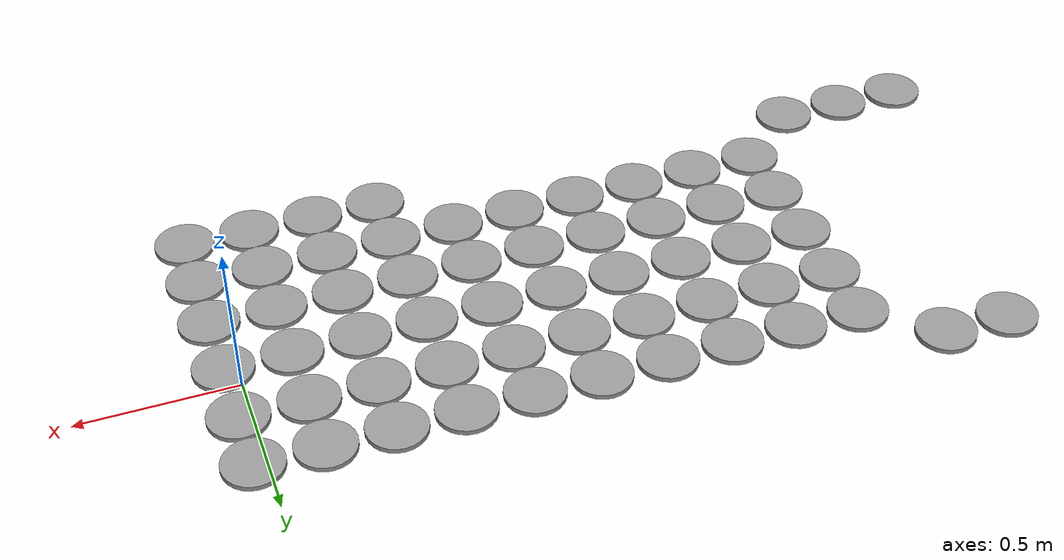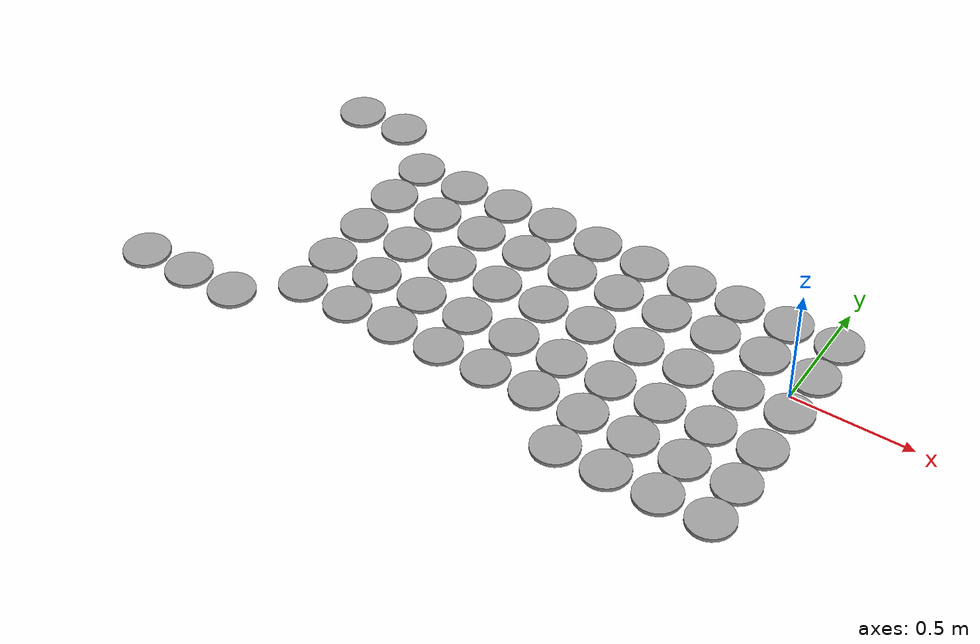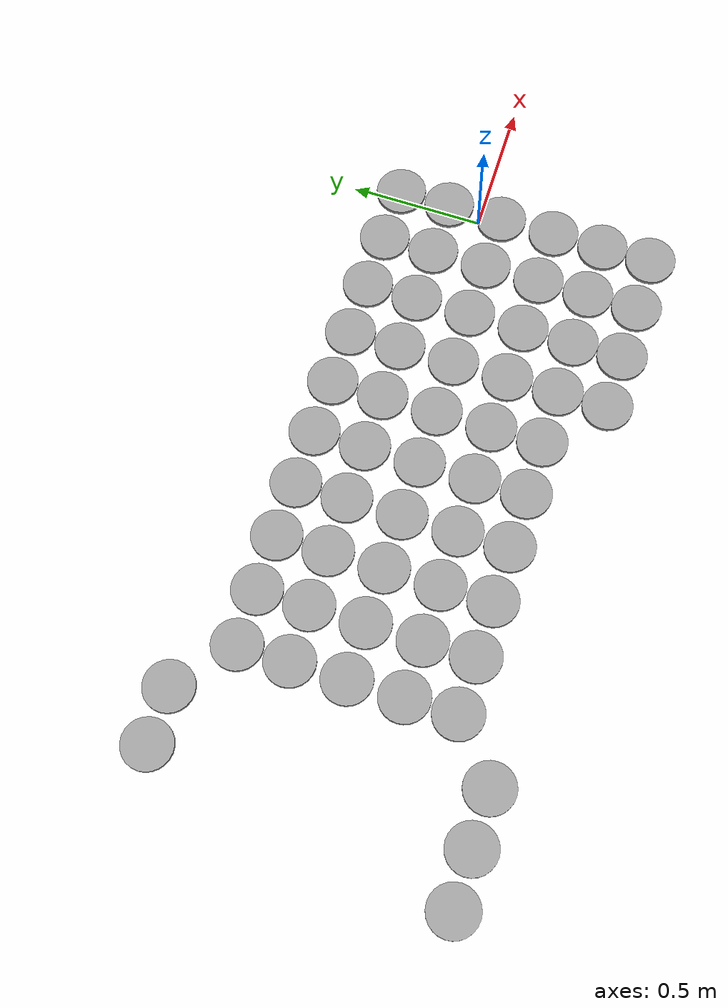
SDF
<sdf version="1.6">
 <world name="default">
  <model name="unit_cylinder_clone_65">
   <pose>-2.27 0.5 0.008117 0 -0 0</pose>
   <link name="link">
    <inertial>
     <mass>1</mass>
     <inertia><ixx>0.145833</ixx><ixy>0</ixy><ixz>0</ixz><iyy>0.145833</iyy><iyz>0</iyz><izz>0.125</izz></inertia>
    </inertial>
    <collision name="collision">
     <geometry><cylinder><radius>0.0950718</radius><length>0.0162339</length></cylinder></geometry>
     <max_contacts>5</max_contacts>
    </collision>
    <visual name="visual">
     <geometry><cylinder><radius>0.0950718</radius><length>0.0162339</length></cylinder></geometry>
     <material>
      <script><name>Gazebo/Grey</name><uri>file://media/materials/scripts/gazebo.material</uri></script>
     </material>
    </visual>
   </link>
  </model>
  <model name="unit_cylinder_clone_70">
   <pose>-2.06 0.5 0.008117 0 -0 0</pose>
   <link name="link">
    <inertial>
     <mass>1</mass>
     <inertia><ixx>0.145833</ixx><ixy>0</ixy><ixz>0</ixz><iyy>0.145833</iyy><iyz>0</iyz><izz>0.125</izz></inertia>
    </inertial>
    <collision name="collision">
     <geometry><cylinder><radius>0.0950718</radius><length>0.0162339</length></cylinder></geometry>
     <max_contacts>5</max_contacts>
    </collision>
    <visual name="visual">
     <geometry><cylinder><radius>0.0950718</radius><length>0.0162339</length></cylinder></geometry>
     <material>
      <script><name>Gazebo/Grey</name><uri>file://media/materials/scripts/gazebo.material</uri></script>
     </material>
    </visual>
   </link>
  </model>
  <model name="unit_cylinder_clone_325">
   <pose>-1.85 -0.484923 0.008117 0 -0 0</pose>
   <link name="link">
    <inertial>
     <mass>1</mass>
     <inertia><ixx>0.145833</ixx><ixy>0</ixy><ixz>0</ixz><iyy>0.145833</iyy><iyz>0</iyz><izz>0.125</izz></inertia>
    </inertial>
    <collision name="collision">
     <geometry><cylinder><radius>0.0950718</radius><length>0.0162339</length></cylinder></geometry>
     <max_contacts>5</max_contacts>
    </collision>
    <visual name="visual">
     <geometry><cylinder><radius>0.0950718</radius><length>0.0162339</length></cylinder></geometry>
     <material>
      <script><name>Gazebo/Grey</name><uri>file://media/materials/scripts/gazebo.material</uri></script>
     </material>
    </visual>
   </link>
  </model>
  <model name="unit_cylinder_clone_326">
   <pose>-1.85 -0.29 0.008117 0 -0 0</pose>
   <link name="link">
    <inertial>
     <mass>1</mass>
     <inertia><ixx>0.145833</ixx><ixy>0</ixy><ixz>0</ixz><iyy>0.145833</iyy><iyz>0</iyz><izz>0.125</izz></inertia>
    </inertial>
    <collision name="collision">
     <geometry><cylinder><radius>0.0950718</radius><length>0.0162339</length></cylinder></geometry>
     <max_contacts>5</max_contacts>
    </collision>
    <visual name="visual">
     <geometry><cylinder><radius>0.0950718</radius><length>0.0162339</length></cylinder></geometry>
     <material>
      <script><name>Gazebo/Grey</name><uri>file://media/materials/scripts/gazebo.material</uri></script>
     </material>
    </visual>
   </link>
  </model>
  <model name="unit_cylinder_clone_327">
   <pose>-1.85 -0.08 0.008117 0 -0 0</pose>
   <link name="link">
    <inertial>
     <mass>1</mass>
     <inertia><ixx>0.145833</ixx><ixy>0</ixy><ixz>0</ixz><iyy>0.145833</iyy><iyz>0</iyz><izz>0.125</izz></inertia>
    </inertial>
    <collision name="collision">
     <geometry><cylinder><radius>0.0950718</radius><length>0.0162339</length></cylinder></geometry>
     <max_contacts>5</max_contacts>
    </collision>
    <visual name="visual">
     <geometry><cylinder><radius>0.0950718</radius><length>0.0162339</length></cylinder></geometry>
     <material>
      <script><name>Gazebo/Grey</name><uri>file://media/materials/scripts/gazebo.material</uri></script>
     </material>
    </visual>
   </link>
  </model>
  <model name="unit_cylinder_clone_328">
   <pose>-1.85 0.13 0.008117 0 -0 0</pose>
   <link name="link">
    <inertial>
     <mass>1</mass>
     <inertia><ixx>0.145833</ixx><ixy>0</ixy><ixz>0</ixz><iyy>0.145833</iyy><iyz>0</iyz><izz>0.125</izz></inertia>
    </inertial>
    <collision name="collision">
     <geometry><cylinder><radius>0.0950718</radius><length>0.0162339</length></cylinder></geometry>
     <max_contacts>5</max_contacts>
    </collision>
    <visual name="visual">
     <geometry><cylinder><radius>0.0950718</radius><length>0.0162339</length></cylinder></geometry>
     <material>
      <script><name>Gazebo/Grey</name><uri>file://media/materials/scripts/gazebo.material</uri></script>
     </material>
    </visual>
   </link>
  </model>
  <model name="unit_cylinder_clone_329">
   <pose>-1.85 0.324923 0.008117 -0 -0 -0</pose>
   <link name="link">
    <inertial>
     <mass>1</mass>
     <inertia><ixx>0.145833</ixx><ixy>0</ixy><ixz>0</ixz><iyy>0.145833</iyy><iyz>0</iyz><izz>0.125</izz></inertia>
    </inertial>
    <collision name="collision">
     <geometry><cylinder><radius>0.0950718</radius><length>0.0162339</length></cylinder></geometry>
     <max_contacts>5</max_contacts>
    </collision>
    <visual name="visual">
     <geometry><cylinder><radius>0.0950718</radius><length>0.0162339</length></cylinder></geometry>
     <material>
      <script><name>Gazebo/Grey</name><uri>file://media/materials/scripts/gazebo.material</uri></script>
     </material>
    </visual>
   </link>
  </model>
  <model name="unit_cylinder_clone_330">
   <pose>-1.64 -0.484923 0.008117 0 -0 0</pose>
   <link name="link">
    <inertial>
     <mass>1</mass>
     <inertia><ixx>0.145833</ixx><ixy>0</ixy><ixz>0</ixz><iyy>0.145833</iyy><iyz>0</iyz><izz>0.125</izz></inertia>
    </inertial>
    <collision name="collision">
     <geometry><cylinder><radius>0.0950718</radius><length>0.0162339</length></cylinder></geometry>
     <max_contacts>5</max_contacts>
    </collision>
    <visual name="visual">
     <geometry><cylinder><radius>0.0950718</radius><length>0.0162339</length></cylinder></geometry>
     <material>
      <script><name>Gazebo/Grey</name><uri>file://media/materials/scripts/gazebo.material</uri></script>
     </material>
    </visual>
   </link>
  </model>
  <model name="unit_cylinder_clone_331">
   <pose>-1.64 -0.29 0.008117 0 -0 0</pose>
   <link name="link">
    <inertial>
     <mass>1</mass>
     <inertia><ixx>0.145833</ixx><ixy>0</ixy><ixz>0</ixz><iyy>0.145833</iyy><iyz>0</iyz><izz>0.125</izz></inertia>
    </inertial>
    <collision name="collision">
     <geometry><cylinder><radius>0.0950718</radius><length>0.0162339</length></cylinder></geometry>
     <max_contacts>5</max_contacts>
    </collision>
    <visual name="visual">
     <geometry><cylinder><radius>0.0950718</radius><length>0.0162339</length></cylinder></geometry>
     <material>
      <script><name>Gazebo/Grey</name><uri>file://media/materials/scripts/gazebo.material</uri></script>
     </material>
    </visual>
   </link>
  </model>
  <model name="unit_cylinder_clone_332">
   <pose>-1.64 -0.08 0.008117 0 -0 0</pose>
   <link name="link">
    <inertial>
     <mass>1</mass>
     <inertia><ixx>0.145833</ixx><ixy>0</ixy><ixz>0</ixz><iyy>0.145833</iyy><iyz>0</iyz><izz>0.125</izz></inertia>
    </inertial>
    <collision name="collision">
     <geometry><cylinder><radius>0.0950718</radius><length>0.0162339</length></cylinder></geometry>
     <max_contacts>5</max_contacts>
    </collision>
    <visual name="visual">
     <geometry><cylinder><radius>0.0950718</radius><length>0.0162339</length></cylinder></geometry>
     <material>
      <script><name>Gazebo/Grey</name><uri>file://media/materials/scripts/gazebo.material</uri></script>
     </material>
    </visual>
   </link>
  </model>
  <model name="unit_cylinder_clone_333">
   <pose>-1.64 0.13 0.008117 0 -0 0</pose>
   <link name="link">
    <inertial>
     <mass>1</mass>
     <inertia><ixx>0.145833</ixx><ixy>0</ixy><ixz>0</ixz><iyy>0.145833</iyy><iyz>0</iyz><izz>0.125</izz></inertia>
    </inertial>
    <collision name="collision">
     <geometry><cylinder><radius>0.0950718</radius><length>0.0162339</length></cylinder></geometry>
     <max_contacts>5</max_contacts>
    </collision>
    <visual name="visual">
     <geometry><cylinder><radius>0.0950718</radius><length>0.0162339</length></cylinder></geometry>
     <material>
      <script><name>Gazebo/Grey</name><uri>file://media/materials/scripts/gazebo.material</uri></script>
     </material>
    </visual>
   </link>
  </model>
  <model name="unit_cylinder_clone_334">
   <pose>-1.64 0.324923 0.008117 -0 -0 -0</pose>
   <link name="link">
    <inertial>
     <mass>1</mass>
     <inertia><ixx>0.145833</ixx><ixy>0</ixy><ixz>0</ixz><iyy>0.145833</iyy><iyz>0</iyz><izz>0.125</izz></inertia>
    </inertial>
    <collision name="collision">
     <geometry><cylinder><radius>0.0950718</radius><length>0.0162339</length></cylinder></geometry>
     <max_contacts>5</max_contacts>
    </collision>
    <visual name="visual">
     <geometry><cylinder><radius>0.0950718</radius><length>0.0162339</length></cylinder></geometry>
     <material>
      <script><name>Gazebo/Grey</name><uri>file://media/materials/scripts/gazebo.material</uri></script>
     </material>
    </visual>
   </link>
  </model>
  <model name="unit_cylinder_clone_335">
   <pose>-1.43 -0.484923 0.008117 0 -0 0</pose>
   <link name="link">
    <inertial>
     <mass>1</mass>
     <inertia><ixx>0.145833</ixx><ixy>0</ixy><ixz>0</ixz><iyy>0.145833</iyy><iyz>0</iyz><izz>0.125</izz></inertia>
    </inertial>
    <collision name="collision">
     <geometry><cylinder><radius>0.0950718</radius><length>0.0162339</length></cylinder></geometry>
     <max_contacts>5</max_contacts>
    </collision>
    <visual name="visual">
     <geometry><cylinder><radius>0.0950718</radius><length>0.0162339</length></cylinder></geometry>
     <material>
      <script><name>Gazebo/Grey</name><uri>file://media/materials/scripts/gazebo.material</uri></script>
     </material>
    </visual>
   </link>
  </model>
  <model name="unit_cylinder_clone_336">
   <pose>-1.43 -0.29 0.008117 0 -0 0</pose>
   <link name="link">
    <inertial>
     <mass>1</mass>
     <inertia><ixx>0.145833</ixx><ixy>0</ixy><ixz>0</ixz><iyy>0.145833</iyy><iyz>0</iyz><izz>0.125</izz></inertia>
    </inertial>
    <collision name="collision">
     <geometry><cylinder><radius>0.0950718</radius><length>0.0162339</length></cylinder></geometry>
     <max_contacts>5</max_contacts>
    </collision>
    <visual name="visual">
     <geometry><cylinder><radius>0.0950718</radius><length>0.0162339</length></cylinder></geometry>
     <material>
      <script><name>Gazebo/Grey</name><uri>file://media/materials/scripts/gazebo.material</uri></script>
     </material>
    </visual>
   </link>
  </model>
  <model name="unit_cylinder_clone_337">
   <pose>-1.43 -0.08 0.008117 0 -0 0</pose>
   <link name="link">
    <inertial>
     <mass>1</mass>
     <inertia><ixx>0.145833</ixx><ixy>0</ixy><ixz>0</ixz><iyy>0.145833</iyy><iyz>0</iyz><izz>0.125</izz></inertia>
    </inertial>
    <collision name="collision">
     <geometry><cylinder><radius>0.0950718</radius><length>0.0162339</length></cylinder></geometry>
     <max_contacts>5</max_contacts>
    </collision>
    <visual name="visual">
     <geometry><cylinder><radius>0.0950718</radius><length>0.0162339</length></cylinder></geometry>
     <material>
      <script><name>Gazebo/Grey</name><uri>file://media/materials/scripts/gazebo.material</uri></script>
     </material>
    </visual>
   </link>
  </model>
  <model name="unit_cylinder_clone_338">
   <pose>-1.43 0.13 0.008117 0 -0 0</pose>
   <link name="link">
    <inertial>
     <mass>1</mass>
     <inertia><ixx>0.145833</ixx><ixy>0</ixy><ixz>0</ixz><iyy>0.145833</iyy><iyz>0</iyz><izz>0.125</izz></inertia>
    </inertial>
    <collision name="collision">
     <geometry><cylinder><radius>0.0950718</radius><length>0.0162339</length></cylinder></geometry>
     <max_contacts>5</max_contacts>
    </collision>
    <visual name="visual">
     <geometry><cylinder><radius>0.0950718</radius><length>0.0162339</length></cylinder></geometry>
     <material>
      <script><name>Gazebo/Grey</name><uri>file://media/materials/scripts/gazebo.material</uri></script>
     </material>
    </visual>
   </link>
  </model>
  <model name="unit_cylinder_clone_339">
   <pose>-1.43 0.324923 0.008117 -0 -0 -0</pose>
   <link name="link">
    <inertial>
     <mass>1</mass>
     <inertia><ixx>0.145833</ixx><ixy>0</ixy><ixz>0</ixz><iyy>0.145833</iyy><iyz>0</iyz><izz>0.125</izz></inertia>
    </inertial>
    <collision name="collision">
     <geometry><cylinder><radius>0.0950718</radius><length>0.0162339</length></cylinder></geometry>
     <max_contacts>5</max_contacts>
    </collision>
    <visual name="visual">
     <geometry><cylinder><radius>0.0950718</radius><length>0.0162339</length></cylinder></geometry>
     <material>
      <script><name>Gazebo/Grey</name><uri>file://media/materials/scripts/gazebo.material</uri></script>
     </material>
    </visual>
   </link>
  </model>
  <model name="unit_cylinder_clone_340">
   <pose>-1.22 -0.484923 0.008117 0 -0 0</pose>
   <link name="link">
    <inertial>
     <mass>1</mass>
     <inertia><ixx>0.145833</ixx><ixy>0</ixy><ixz>0</ixz><iyy>0.145833</iyy><iyz>0</iyz><izz>0.125</izz></inertia>
    </inertial>
    <collision name="collision">
     <geometry><cylinder><radius>0.0950718</radius><length>0.0162339</length></cylinder></geometry>
     <max_contacts>5</max_contacts>
    </collision>
    <visual name="visual">
     <geometry><cylinder><radius>0.0950718</radius><length>0.0162339</length></cylinder></geometry>
     <material>
      <script><name>Gazebo/Grey</name><uri>file://media/materials/scripts/gazebo.material</uri></script>
     </material>
    </visual>
   </link>
  </model>
  <model name="unit_cylinder_clone_341">
   <pose>-1.22 -0.29 0.008117 0 -0 0</pose>
   <link name="link">
    <inertial>
     <mass>1</mass>
     <inertia><ixx>0.145833</ixx><ixy>0</ixy><ixz>0</ixz><iyy>0.145833</iyy><iyz>0</iyz><izz>0.125</izz></inertia>
    </inertial>
    <collision name="collision">
     <geometry><cylinder><radius>0.0950718</radius><length>0.0162339</length></cylinder></geometry>
     <max_contacts>5</max_contacts>
    </collision>
    <visual name="visual">
     <geometry><cylinder><radius>0.0950718</radius><length>0.0162339</length></cylinder></geometry>
     <material>
      <script><name>Gazebo/Grey</name><uri>file://media/materials/scripts/gazebo.material</uri></script>
     </material>
    </visual>
   </link>
  </model>
  <model name="unit_cylinder_clone_342">
   <pose>-1.22 -0.08 0.008117 0 -0 0</pose>
   <link name="link">
    <inertial>
     <mass>1</mass>
     <inertia><ixx>0.145833</ixx><ixy>0</ixy><ixz>0</ixz><iyy>0.145833</iyy><iyz>0</iyz><izz>0.125</izz></inertia>
    </inertial>
    <collision name="collision">
     <geometry><cylinder><radius>0.0950718</radius><length>0.0162339</length></cylinder></geometry>
     <max_contacts>5</max_contacts>
    </collision>
    <visual name="visual">
     <geometry><cylinder><radius>0.0950718</radius><length>0.0162339</length></cylinder></geometry>
     <material>
      <script><name>Gazebo/Grey</name><uri>file://media/materials/scripts/gazebo.material</uri></script>
     </material>
    </visual>
   </link>
  </model>
  <model name="unit_cylinder_clone_343">
   <pose>-1.22 0.13 0.008117 0 -0 0</pose>
   <link name="link">
    <inertial>
     <mass>1</mass>
     <inertia><ixx>0.145833</ixx><ixy>0</ixy><ixz>0</ixz><iyy>0.145833</iyy><iyz>0</iyz><izz>0.125</izz></inertia>
    </inertial>
    <collision name="collision">
     <geometry><cylinder><radius>0.0950718</radius><length>0.0162339</length></cylinder></geometry>
     <max_contacts>5</max_contacts>
    </collision>
    <visual name="visual">
     <geometry><cylinder><radius>0.0950718</radius><length>0.0162339</length></cylinder></geometry>
     <material>
      <script><name>Gazebo/Grey</name><uri>file://media/materials/scripts/gazebo.material</uri></script>
     </material>
    </visual>
   </link>
  </model>
  <model name="unit_cylinder_clone_344">
   <pose>-1.22 0.324923 0.008117 -0 -0 -0</pose>
   <link name="link">
    <inertial>
     <mass>1</mass>
     <inertia><ixx>0.145833</ixx><ixy>0</ixy><ixz>0</ixz><iyy>0.145833</iyy><iyz>0</iyz><izz>0.125</izz></inertia>
    </inertial>
    <collision name="collision">
     <geometry><cylinder><radius>0.0950718</radius><length>0.0162339</length></cylinder></geometry>
     <max_contacts>5</max_contacts>
    </collision>
    <visual name="visual">
     <geometry><cylinder><radius>0.0950718</radius><length>0.0162339</length></cylinder></geometry>
     <material>
      <script><name>Gazebo/Grey</name><uri>file://media/materials/scripts/gazebo.material</uri></script>
     </material>
    </visual>
   </link>
  </model>
  <model name="unit_cylinder_clone_345">
   <pose>-1.01 -0.484923 0.008117 0 -0 0</pose>
   <link name="link">
    <inertial>
     <mass>1</mass>
     <inertia><ixx>0.145833</ixx><ixy>0</ixy><ixz>0</ixz><iyy>0.145833</iyy><iyz>0</iyz><izz>0.125</izz></inertia>
    </inertial>
    <collision name="collision">
     <geometry><cylinder><radius>0.0950718</radius><length>0.0162339</length></cylinder></geometry>
     <max_contacts>5</max_contacts>
    </collision>
    <visual name="visual">
     <geometry><cylinder><radius>0.0950718</radius><length>0.0162339</length></cylinder></geometry>
     <material>
      <script><name>Gazebo/Grey</name><uri>file://media/materials/scripts/gazebo.material</uri></script>
     </material>
    </visual>
   </link>
  </model>
  <model name="unit_cylinder_clone_346">
   <pose>-1.01 -0.29 0.008117 0 -0 0</pose>
   <link name="link">
    <inertial>
     <mass>1</mass>
     <inertia><ixx>0.145833</ixx><ixy>0</ixy><ixz>0</ixz><iyy>0.145833</iyy><iyz>0</iyz><izz>0.125</izz></inertia>
    </inertial>
    <collision name="collision">
     <geometry><cylinder><radius>0.0950718</radius><length>0.0162339</length></cylinder></geometry>
     <max_contacts>5</max_contacts>
    </collision>
    <visual name="visual">
     <geometry><cylinder><radius>0.0950718</radius><length>0.0162339</length></cylinder></geometry>
     <material>
      <script><name>Gazebo/Grey</name><uri>file://media/materials/scripts/gazebo.material</uri></script>
     </material>
    </visual>
   </link>
  </model>
  <model name="unit_cylinder_clone_347">
   <pose>-1.01 -0.08 0.008117 0 -0 0</pose>
   <link name="link">
    <inertial>
     <mass>1</mass>
     <inertia><ixx>0.145833</ixx><ixy>0</ixy><ixz>0</ixz><iyy>0.145833</iyy><iyz>0</iyz><izz>0.125</izz></inertia>
    </inertial>
    <collision name="collision">
     <geometry><cylinder><radius>0.0950718</radius><length>0.0162339</length></cylinder></geometry>
     <max_contacts>5</max_contacts>
    </collision>
    <visual name="visual">
     <geometry><cylinder><radius>0.0950718</radius><length>0.0162339</length></cylinder></geometry>
     <material>
      <script><name>Gazebo/Grey</name><uri>file://media/materials/scripts/gazebo.material</uri></script>
     </material>
    </visual>
   </link>
  </model>
  <model name="unit_cylinder_clone_348">
   <pose>-1.01 0.13 0.008117 0 -0 0</pose>
   <link name="link">
    <inertial>
     <mass>1</mass>
     <inertia><ixx>0.145833</ixx><ixy>0</ixy><ixz>0</ixz><iyy>0.145833</iyy><iyz>0</iyz><izz>0.125</izz></inertia>
    </inertial>
    <collision name="collision">
     <geometry><cylinder><radius>0.0950718</radius><length>0.0162339</length></cylinder></geometry>
     <max_contacts>5</max_contacts>
    </collision>
    <visual name="visual">
     <geometry><cylinder><radius>0.0950718</radius><length>0.0162339</length></cylinder></geometry>
     <material>
      <script><name>Gazebo/Grey</name><uri>file://media/materials/scripts/gazebo.material</uri></script>
     </material>
    </visual>
   </link>
  </model>
  <model name="unit_cylinder_clone_349">
   <pose>-1.01 0.324923 0.008117 -0 -0 -0</pose>
   <link name="link">
    <inertial>
     <mass>1</mass>
     <inertia><ixx>0.145833</ixx><ixy>0</ixy><ixz>0</ixz><iyy>0.145833</iyy><iyz>0</iyz><izz>0.125</izz></inertia>
    </inertial>
    <collision name="collision">
     <geometry><cylinder><radius>0.0950718</radius><length>0.0162339</length></cylinder></geometry>
     <max_contacts>5</max_contacts>
    </collision>
    <visual name="visual">
     <geometry><cylinder><radius>0.0950718</radius><length>0.0162339</length></cylinder></geometry>
     <material>
      <script><name>Gazebo/Grey</name><uri>file://media/materials/scripts/gazebo.material</uri></script>
     </material>
    </visual>
   </link>
  </model>
  <model name="unit_cylinder_clone_350">
   <pose>-0.8 -0.484923 0.008117 0 -0 0</pose>
   <link name="link">
    <inertial>
     <mass>1</mass>
     <inertia><ixx>0.145833</ixx><ixy>0</ixy><ixz>0</ixz><iyy>0.145833</iyy><iyz>0</iyz><izz>0.125</izz></inertia>
    </inertial>
    <collision name="collision">
     <geometry><cylinder><radius>0.0950718</radius><length>0.0162339</length></cylinder></geometry>
     <max_contacts>5</max_contacts>
    </collision>
    <visual name="visual">
     <geometry><cylinder><radius>0.0950718</radius><length>0.0162339</length></cylinder></geometry>
     <material>
      <script><name>Gazebo/Grey</name><uri>file://media/materials/scripts/gazebo.material</uri></script>
     </material>
    </visual>
   </link>
  </model>
  <model name="unit_cylinder_clone_351">
   <pose>-0.8 -0.29 0.008117 0 -0 0</pose>
   <link name="link">
    <inertial>
     <mass>1</mass>
     <inertia><ixx>0.145833</ixx><ixy>0</ixy><ixz>0</ixz><iyy>0.145833</iyy><iyz>0</iyz><izz>0.125</izz></inertia>
    </inertial>
    <collision name="collision">
     <geometry><cylinder><radius>0.0950718</radius><length>0.0162339</length></cylinder></geometry>
     <max_contacts>5</max_contacts>
    </collision>
    <visual name="visual">
     <geometry><cylinder><radius>0.0950718</radius><length>0.0162339</length></cylinder></geometry>
     <material>
      <script><name>Gazebo/Grey</name><uri>file://media/materials/scripts/gazebo.material</uri></script>
     </material>
    </visual>
   </link>
  </model>
  <model name="unit_cylinder_clone_352">
   <pose>-0.8 -0.08 0.008117 0 -0 0</pose>
   <link name="link">
    <inertial>
     <mass>1</mass>
     <inertia><ixx>0.145833</ixx><ixy>0</ixy><ixz>0</ixz><iyy>0.145833</iyy><iyz>0</iyz><izz>0.125</izz></inertia>
    </inertial>
    <collision name="collision">
     <geometry><cylinder><radius>0.0950718</radius><length>0.0162339</length></cylinder></geometry>
     <max_contacts>5</max_contacts>
    </collision>
    <visual name="visual">
     <geometry><cylinder><radius>0.0950718</radius><length>0.0162339</length></cylinder></geometry>
     <material>
      <script><name>Gazebo/Grey</name><uri>file://media/materials/scripts/gazebo.material</uri></script>
     </material>
    </visual>
   </link>
  </model>
  <model name="unit_cylinder_clone_353">
   <pose>-0.8 0.13 0.008117 0 -0 0</pose>
   <link name="link">
    <inertial>
     <mass>1</mass>
     <inertia><ixx>0.145833</ixx><ixy>0</ixy><ixz>0</ixz><iyy>0.145833</iyy><iyz>0</iyz><izz>0.125</izz></inertia>
    </inertial>
    <collision name="collision">
     <geometry><cylinder><radius>0.0950718</radius><length>0.0162339</length></cylinder></geometry>
     <max_contacts>5</max_contacts>
    </collision>
    <visual name="visual">
     <geometry><cylinder><radius>0.0950718</radius><length>0.0162339</length></cylinder></geometry>
     <material>
      <script><name>Gazebo/Grey</name><uri>file://media/materials/scripts/gazebo.material</uri></script>
     </material>
    </visual>
   </link>
  </model>
  <model name="unit_cylinder_clone_354">
   <pose>-0.8 0.324923 0.008117 -0 -0 -0</pose>
   <link name="link">
    <inertial>
     <mass>1</mass>
     <inertia><ixx>0.145833</ixx><ixy>0</ixy><ixz>0</ixz><iyy>0.145833</iyy><iyz>0</iyz><izz>0.125</izz></inertia>
    </inertial>
    <collision name="collision">
     <geometry><cylinder><radius>0.0950718</radius><length>0.0162339</length></cylinder></geometry>
     <max_contacts>5</max_contacts>
    </collision>
    <visual name="visual">
     <geometry><cylinder><radius>0.0950718</radius><length>0.0162339</length></cylinder></geometry>
     <material>
      <script><name>Gazebo/Grey</name><uri>file://media/materials/scripts/gazebo.material</uri></script>
     </material>
    </visual>
   </link>
  </model>
  <model name="unit_cylinder_clone_355">
   <pose>-0.59 -0.484923 0.008117 0 -0 0</pose>
   <link name="link">
    <inertial>
     <mass>1</mass>
     <inertia><ixx>0.145833</ixx><ixy>0</ixy><ixz>0</ixz><iyy>0.145833</iyy><iyz>0</iyz><izz>0.125</izz></inertia>
    </inertial>
    <collision name="collision">
     <geometry><cylinder><radius>0.0950718</radius><length>0.0162339</length></cylinder></geometry>
     <max_contacts>5</max_contacts>
    </collision>
    <visual name="visual">
     <geometry><cylinder><radius>0.0950718</radius><length>0.0162339</length></cylinder></geometry>
     <material>
      <script><name>Gazebo/Grey</name><uri>file://media/materials/scripts/gazebo.material</uri></script>
     </material>
    </visual>
   </link>
  </model>
  <model name="unit_cylinder_clone_356">
   <pose>-0.59 -0.29 0.008117 0 -0 0</pose>
   <link name="link">
    <inertial>
     <mass>1</mass>
     <inertia><ixx>0.145833</ixx><ixy>0</ixy><ixz>0</ixz><iyy>0.145833</iyy><iyz>0</iyz><izz>0.125</izz></inertia>
    </inertial>
    <collision name="collision">
     <geometry><cylinder><radius>0.0950718</radius><length>0.0162339</length></cylinder></geometry>
     <max_contacts>5</max_contacts>
    </collision>
    <visual name="visual">
     <geometry><cylinder><radius>0.0950718</radius><length>0.0162339</length></cylinder></geometry>
     <material>
      <script><name>Gazebo/Grey</name><uri>file://media/materials/scripts/gazebo.material</uri></script>
     </material>
    </visual>
   </link>
  </model>
  <model name="unit_cylinder_clone_357">
   <pose>-0.59 -0.08 0.008117 0 -0 0</pose>
   <link name="link">
    <inertial>
     <mass>1</mass>
     <inertia><ixx>0.145833</ixx><ixy>0</ixy><ixz>0</ixz><iyy>0.145833</iyy><iyz>0</iyz><izz>0.125</izz></inertia>
    </inertial>
    <collision name="collision">
     <geometry><cylinder><radius>0.0950718</radius><length>0.0162339</length></cylinder></geometry>
     <max_contacts>5</max_contacts>
    </collision>
    <visual name="visual">
     <geometry><cylinder><radius>0.0950718</radius><length>0.0162339</length></cylinder></geometry>
     <material>
      <script><name>Gazebo/Grey</name><uri>file://media/materials/scripts/gazebo.material</uri></script>
     </material>
    </visual>
   </link>
  </model>
  <model name="unit_cylinder_clone_358">
   <pose>-0.59 0.13 0.008117 0 -0 0</pose>
   <link name="link">
    <inertial>
     <mass>1</mass>
     <inertia><ixx>0.145833</ixx><ixy>0</ixy><ixz>0</ixz><iyy>0.145833</iyy><iyz>0</iyz><izz>0.125</izz></inertia>
    </inertial>
    <collision name="collision">
     <geometry><cylinder><radius>0.0950718</radius><length>0.0162339</length></cylinder></geometry>
     <max_contacts>5</max_contacts>
    </collision>
    <visual name="visual">
     <geometry><cylinder><radius>0.0950718</radius><length>0.0162339</length></cylinder></geometry>
     <material>
      <script><name>Gazebo/Grey</name><uri>file://media/materials/scripts/gazebo.material</uri></script>
     </material>
    </visual>
   </link>
  </model>
  <model name="unit_cylinder_clone_359">
   <pose>-0.59 0.324923 0.008117 -0 -0 -0</pose>
   <link name="link">
    <inertial>
     <mass>1</mass>
     <inertia><ixx>0.145833</ixx><ixy>0</ixy><ixz>0</ixz><iyy>0.145833</iyy><iyz>0</iyz><izz>0.125</izz></inertia>
    </inertial>
    <collision name="collision">
     <geometry><cylinder><radius>0.0950718</radius><length>0.0162339</length></cylinder></geometry>
     <max_contacts>5</max_contacts>
    </collision>
    <visual name="visual">
     <geometry><cylinder><radius>0.0950718</radius><length>0.0162339</length></cylinder></geometry>
     <material>
      <script><name>Gazebo/Grey</name><uri>file://media/materials/scripts/gazebo.material</uri></script>
     </material>
    </visual>
   </link>
  </model>
  <model name="unit_cylinder_clone_360">
   <pose>-0.38 -0.484923 0.008117 0 -0 0</pose>
   <link name="link">
    <inertial>
     <mass>1</mass>
     <inertia><ixx>0.145833</ixx><ixy>0</ixy><ixz>0</ixz><iyy>0.145833</iyy><iyz>0</iyz><izz>0.125</izz></inertia>
    </inertial>
    <collision name="collision">
     <geometry><cylinder><radius>0.0950718</radius><length>0.0162339</length></cylinder></geometry>
     <max_contacts>5</max_contacts>
    </collision>
    <visual name="visual">
     <geometry><cylinder><radius>0.0950718</radius><length>0.0162339</length></cylinder></geometry>
     <material>
      <script><name>Gazebo/Grey</name><uri>file://media/materials/scripts/gazebo.material</uri></script>
     </material>
    </visual>
   </link>
  </model>
  <model name="unit_cylinder_clone_361">
   <pose>-0.38 -0.29 0.008117 0 -0 0</pose>
   <link name="link">
    <inertial>
     <mass>1</mass>
     <inertia><ixx>0.145833</ixx><ixy>0</ixy><ixz>0</ixz><iyy>0.145833</iyy><iyz>0</iyz><izz>0.125</izz></inertia>
    </inertial>
    <collision name="collision">
     <geometry><cylinder><radius>0.0950718</radius><length>0.0162339</length></cylinder></geometry>
     <max_contacts>5</max_contacts>
    </collision>
    <visual name="visual">
     <geometry><cylinder><radius>0.0950718</radius><length>0.0162339</length></cylinder></geometry>
     <material>
      <script><name>Gazebo/Grey</name><uri>file://media/materials/scripts/gazebo.material</uri></script>
     </material>
    </visual>
   </link>
  </model>
  <model name="unit_cylinder_clone_362">
   <pose>-0.38 -0.08 0.008117 0 -0 0</pose>
   <link name="link">
    <inertial>
     <mass>1</mass>
     <inertia><ixx>0.145833</ixx><ixy>0</ixy><ixz>0</ixz><iyy>0.145833</iyy><iyz>0</iyz><izz>0.125</izz></inertia>
    </inertial>
    <collision name="collision">
     <geometry><cylinder><radius>0.0950718</radius><length>0.0162339</length></cylinder></geometry>
     <max_contacts>5</max_contacts>
    </collision>
    <visual name="visual">
     <geometry><cylinder><radius>0.0950718</radius><length>0.0162339</length></cylinder></geometry>
     <material>
      <script><name>Gazebo/Grey</name><uri>file://media/materials/scripts/gazebo.material</uri></script>
     </material>
    </visual>
   </link>
  </model>
  <model name="unit_cylinder_clone_363">
   <pose>-0.38 0.13 0.008117 0 -0 0</pose>
   <link name="link">
    <inertial>
     <mass>1</mass>
     <inertia><ixx>0.145833</ixx><ixy>0</ixy><ixz>0</ixz><iyy>0.145833</iyy><iyz>0</iyz><izz>0.125</izz></inertia>
    </inertial>
    <collision name="collision">
     <geometry><cylinder><radius>0.0950718</radius><length>0.0162339</length></cylinder></geometry>
     <max_contacts>5</max_contacts>
    </collision>
    <visual name="visual">
     <geometry><cylinder><radius>0.0950718</radius><length>0.0162339</length></cylinder></geometry>
     <material>
      <script><name>Gazebo/Grey</name><uri>file://media/materials/scripts/gazebo.material</uri></script>
     </material>
    </visual>
   </link>
  </model>
  <model name="unit_cylinder_clone_364">
   <pose>-0.38 0.324923 0.008117 -0 -0 -0</pose>
   <link name="link">
    <inertial>
     <mass>1</mass>
     <inertia><ixx>0.145833</ixx><ixy>0</ixy><ixz>0</ixz><iyy>0.145833</iyy><iyz>0</iyz><izz>0.125</izz></inertia>
    </inertial>
    <collision name="collision">
     <geometry><cylinder><radius>0.0950718</radius><length>0.0162339</length></cylinder></geometry>
     <max_contacts>5</max_contacts>
    </collision>
    <visual name="visual">
     <geometry><cylinder><radius>0.0950718</radius><length>0.0162339</length></cylinder></geometry>
     <material>
      <script><name>Gazebo/Grey</name><uri>file://media/materials/scripts/gazebo.material</uri></script>
     </material>
    </visual>
   </link>
  </model>
  <model name="unit_cylinder_clone_365">
   <pose>-0.17 -0.484923 0.008117 0 -0 0</pose>
   <link name="link">
    <inertial>
     <mass>1</mass>
     <inertia><ixx>0.145833</ixx><ixy>0</ixy><ixz>0</ixz><iyy>0.145833</iyy><iyz>0</iyz><izz>0.125</izz></inertia>
    </inertial>
    <collision name="collision">
     <geometry><cylinder><radius>0.0950718</radius><length>0.0162339</length></cylinder></geometry>
     <max_contacts>5</max_contacts>
    </collision>
    <visual name="visual">
     <geometry><cylinder><radius>0.0950718</radius><length>0.0162339</length></cylinder></geometry>
     <material>
      <script><name>Gazebo/Grey</name><uri>file://media/materials/scripts/gazebo.material</uri></script>
     </material>
    </visual>
   </link>
  </model>
  <model name="unit_cylinder_clone_366">
   <pose>-0.17 -0.29 0.008117 0 -0 0</pose>
   <link name="link">
    <inertial>
     <mass>1</mass>
     <inertia><ixx>0.145833</ixx><ixy>0</ixy><ixz>0</ixz><iyy>0.145833</iyy><iyz>0</iyz><izz>0.125</izz></inertia>
    </inertial>
    <collision name="collision">
     <geometry><cylinder><radius>0.0950718</radius><length>0.0162339</length></cylinder></geometry>
     <max_contacts>5</max_contacts>
    </collision>
    <visual name="visual">
     <geometry><cylinder><radius>0.0950718</radius><length>0.0162339</length></cylinder></geometry>
     <material>
      <script><name>Gazebo/Grey</name><uri>file://media/materials/scripts/gazebo.material</uri></script>
     </material>
    </visual>
   </link>
  </model>
  <model name="unit_cylinder_clone_367">
   <pose>-0.17 -0.08 0.008117 0 -0 0</pose>
   <link name="link">
    <inertial>
     <mass>1</mass>
     <inertia><ixx>0.145833</ixx><ixy>0</ixy><ixz>0</ixz><iyy>0.145833</iyy><iyz>0</iyz><izz>0.125</izz></inertia>
    </inertial>
    <collision name="collision">
     <geometry><cylinder><radius>0.0950718</radius><length>0.0162339</length></cylinder></geometry>
     <max_contacts>5</max_contacts>
    </collision>
    <visual name="visual">
     <geometry><cylinder><radius>0.0950718</radius><length>0.0162339</length></cylinder></geometry>
     <material>
      <script><name>Gazebo/Grey</name><uri>file://media/materials/scripts/gazebo.material</uri></script>
     </material>
    </visual>
   </link>
  </model>
  <model name="unit_cylinder_clone_368">
   <pose>-0.17 0.13 0.008117 0 -0 0</pose>
   <link name="link">
    <inertial>
     <mass>1</mass>
     <inertia><ixx>0.145833</ixx><ixy>0</ixy><ixz>0</ixz><iyy>0.145833</iyy><iyz>0</iyz><izz>0.125</izz></inertia>
    </inertial>
    <collision name="collision">
     <geometry><cylinder><radius>0.0950718</radius><length>0.0162339</length></cylinder></geometry>
     <max_contacts>5</max_contacts>
    </collision>
    <visual name="visual">
     <geometry><cylinder><radius>0.0950718</radius><length>0.0162339</length></cylinder></geometry>
     <material>
      <script><name>Gazebo/Grey</name><uri>file://media/materials/scripts/gazebo.material</uri></script>
     </material>
    </visual>
   </link>
  </model>
  <model name="unit_cylinder_clone_369">
   <pose>-0.17 0.324923 0.008117 -0 -0 -0</pose>
   <link name="link">
    <inertial>
     <mass>1</mass>
     <inertia><ixx>0.145833</ixx><ixy>0</ixy><ixz>0</ixz><iyy>0.145833</iyy><iyz>0</iyz><izz>0.125</izz></inertia>
    </inertial>
    <collision name="collision">
     <geometry><cylinder><radius>0.0950718</radius><length>0.0162339</length></cylinder></geometry>
     <max_contacts>5</max_contacts>
    </collision>
    <visual name="visual">
     <geometry><cylinder><radius>0.0950718</radius><length>0.0162339</length></cylinder></geometry>
     <material>
      <script><name>Gazebo/Grey</name><uri>file://media/materials/scripts/gazebo.material</uri></script>
     </material>
    </visual>
   </link>
  </model>
  <model name="unit_cylinder_clone_370">
   <pose>0.04 -0.484923 0.008117 0 -0 0</pose>
   <link name="link">
    <inertial>
     <mass>1</mass>
     <inertia><ixx>0.145833</ixx><ixy>0</ixy><ixz>0</ixz><iyy>0.145833</iyy><iyz>0</iyz><izz>0.125</izz></inertia>
    </inertial>
    <collision name="collision">
     <geometry><cylinder><radius>0.0950718</radius><length>0.0162339</length></cylinder></geometry>
     <max_contacts>5</max_contacts>
    </collision>
    <visual name="visual">
     <geometry><cylinder><radius>0.0950718</radius><length>0.0162339</length></cylinder></geometry>
     <material>
      <script><name>Gazebo/Grey</name><uri>file://media/materials/scripts/gazebo.material</uri></script>
     </material>
    </visual>
   </link>
  </model>
  <model name="unit_cylinder_clone_371">
   <pose>0.04 -0.29 0.008117 0 -0 0</pose>
   <link name="link">
    <inertial>
     <mass>1</mass>
     <inertia><ixx>0.145833</ixx><ixy>0</ixy><ixz>0</ixz><iyy>0.145833</iyy><iyz>0</iyz><izz>0.125</izz></inertia>
    </inertial>
    <collision name="collision">
     <geometry><cylinder><radius>0.0950718</radius><length>0.0162339</length></cylinder></geometry>
     <max_contacts>5</max_contacts>
    </collision>
    <visual name="visual">
     <geometry><cylinder><radius>0.0950718</radius><length>0.0162339</length></cylinder></geometry>
     <material>
      <script><name>Gazebo/Grey</name><uri>file://media/materials/scripts/gazebo.material</uri></script>
     </material>
    </visual>
   </link>
  </model>
  <model name="unit_cylinder_clone_372">
   <pose>0.04 -0.08 0.008117 0 -0 0</pose>
   <link name="link">
    <inertial>
     <mass>1</mass>
     <inertia><ixx>0.145833</ixx><ixy>0</ixy><ixz>0</ixz><iyy>0.145833</iyy><iyz>0</iyz><izz>0.125</izz></inertia>
    </inertial>
    <collision name="collision">
     <geometry><cylinder><radius>0.0950718</radius><length>0.0162339</length></cylinder></geometry>
     <max_contacts>5</max_contacts>
    </collision>
    <visual name="visual">
     <geometry><cylinder><radius>0.0950718</radius><length>0.0162339</length></cylinder></geometry>
     <material>
      <script><name>Gazebo/Grey</name><uri>file://media/materials/scripts/gazebo.material</uri></script>
     </material>
    </visual>
   </link>
  </model>
  <model name="unit_cylinder_clone_373">
   <pose>0.04 0.13 0.008117 0 -0 0</pose>
   <link name="link">
    <inertial>
     <mass>1</mass>
     <inertia><ixx>0.145833</ixx><ixy>0</ixy><ixz>0</ixz><iyy>0.145833</iyy><iyz>0</iyz><izz>0.125</izz></inertia>
    </inertial>
    <collision name="collision">
     <geometry><cylinder><radius>0.0950718</radius><length>0.0162339</length></cylinder></geometry>
     <max_contacts>5</max_contacts>
    </collision>
    <visual name="visual">
     <geometry><cylinder><radius>0.0950718</radius><length>0.0162339</length></cylinder></geometry>
     <material>
      <script><name>Gazebo/Grey</name><uri>file://media/materials/scripts/gazebo.material</uri></script>
     </material>
    </visual>
   </link>
  </model>
  <model name="unit_cylinder_clone_374">
   <pose>0.04 0.324923 0.008117 -0 -0 -0</pose>
   <link name="link">
    <inertial>
     <mass>1</mass>
     <inertia><ixx>0.145833</ixx><ixy>0</ixy><ixz>0</ixz><iyy>0.145833</iyy><iyz>0</iyz><izz>0.125</izz></inertia>
    </inertial>
    <collision name="collision">
     <geometry><cylinder><radius>0.0950718</radius><length>0.0162339</length></cylinder></geometry>
     <max_contacts>5</max_contacts>
    </collision>
    <visual name="visual">
     <geometry><cylinder><radius>0.0950718</radius><length>0.0162339</length></cylinder></geometry>
     <material>
      <script><name>Gazebo/Grey</name><uri>file://media/materials/scripts/gazebo.material</uri></script>
     </material>
    </visual>
   </link>
  </model>
  <model name="unit_cylinder_clone_564">
   <pose>-2.48 -0.66 0.008117 0 -0 0</pose>
   <link name="link">
    <inertial>
     <mass>1</mass>
     <inertia><ixx>0.145833</ixx><ixy>0</ixy><ixz>0</ixz><iyy>0.145833</iyy><iyz>0</iyz><izz>0.125</izz></inertia>
    </inertial>
    <collision name="collision">
     <geometry><cylinder><radius>0.0950718</radius><length>0.0162339</length></cylinder></geometry>
     <max_contacts>5</max_contacts>
    </collision>
    <visual name="visual">
     <geometry><cylinder><radius>0.0950718</radius><length>0.0162339</length></cylinder></geometry>
     <material>
      <script><name>Gazebo/Grey</name><uri>file://media/materials/scripts/gazebo.material</uri></script>
     </material>
    </visual>
   </link>
  </model>
  <model name="unit_cylinder_clone_569">
   <pose>-2.27 -0.66 0.008117 0 -0 0</pose>
   <link name="link">
    <inertial>
     <mass>1</mass>
     <inertia><ixx>0.145833</ixx><ixy>0</ixy><ixz>0</ixz><iyy>0.145833</iyy><iyz>0</iyz><izz>0.125</izz></inertia>
    </inertial>
    <collision name="collision">
     <geometry><cylinder><radius>0.0950718</radius><length>0.0162339</length></cylinder></geometry>
     <max_contacts>5</max_contacts>
    </collision>
    <visual name="visual">
     <geometry><cylinder><radius>0.0950718</radius><length>0.0162339</length></cylinder></geometry>
     <material>
      <script><name>Gazebo/Grey</name><uri>file://media/materials/scripts/gazebo.material</uri></script>
     </material>
    </visual>
   </link>
  </model>
  <model name="unit_cylinder_clone_574">
   <pose>-2.06 -0.66 0.008117 0 -0 0</pose>
   <link name="link">
    <inertial>
     <mass>1</mass>
     <inertia><ixx>0.145833</ixx><ixy>0</ixy><ixz>0</ixz><iyy>0.145833</iyy><iyz>0</iyz><izz>0.125</izz></inertia>
    </inertial>
    <collision name="collision">
     <geometry><cylinder><radius>0.0950718</radius><length>0.0162339</length></cylinder></geometry>
     <max_contacts>5</max_contacts>
    </collision>
    <visual name="visual">
     <geometry><cylinder><radius>0.0950718</radius><length>0.0162339</length></cylinder></geometry>
     <material>
      <script><name>Gazebo/Grey</name><uri>file://media/materials/scripts/gazebo.material</uri></script>
     </material>
    </visual>
   </link>
  </model>
  <model name="unit_cylinder_clone_609">
   <pose>-0.59 -0.675077 0.008117 -0 -0 -0</pose>
   <link name="link">
    <inertial>
     <mass>1</mass>
     <inertia><ixx>0.145833</ixx><ixy>0</ixy><ixz>0</ixz><iyy>0.145833</iyy><iyz>0</iyz><izz>0.125</izz></inertia>
    </inertial>
    <collision name="collision">
     <geometry><cylinder><radius>0.0950718</radius><length>0.0162339</length></cylinder></geometry>
     <max_contacts>5</max_contacts>
    </collision>
    <visual name="visual">
     <geometry><cylinder><radius>0.0950718</radius><length>0.0162339</length></cylinder></geometry>
     <material>
      <script><name>Gazebo/Grey</name><uri>file://media/materials/scripts/gazebo.material</uri></script>
     </material>
    </visual>
   </link>
  </model>
  <model name="unit_cylinder_clone_614">
   <pose>-0.38 -0.675077 0.008117 -0 -0 -0</pose>
   <link name="link">
    <inertial>
     <mass>1</mass>
     <inertia><ixx>0.145833</ixx><ixy>0</ixy><ixz>0</ixz><iyy>0.145833</iyy><iyz>0</iyz><izz>0.125</izz></inertia>
    </inertial>
    <collision name="collision">
     <geometry><cylinder><radius>0.0950718</radius><length>0.0162339</length></cylinder></geometry>
     <max_contacts>5</max_contacts>
    </collision>
    <visual name="visual">
     <geometry><cylinder><radius>0.0950718</radius><length>0.0162339</length></cylinder></geometry>
     <material>
      <script><name>Gazebo/Grey</name><uri>file://media/materials/scripts/gazebo.material</uri></script>
     </material>
    </visual>
   </link>
  </model>
  <model name="unit_cylinder_clone_619">
   <pose>-0.17 -0.675077 0.008117 -0 -0 -0</pose>
   <link name="link">
    <inertial>
     <mass>1</mass>
     <inertia><ixx>0.145833</ixx><ixy>0</ixy><ixz>0</ixz><iyy>0.145833</iyy><iyz>0</iyz><izz>0.125</izz></inertia>
    </inertial>
    <collision name="collision">
     <geometry><cylinder><radius>0.0950718</radius><length>0.0162339</length></cylinder></geometry>
     <max_contacts>5</max_contacts>
    </collision>
    <visual name="visual">
     <geometry><cylinder><radius>0.0950718</radius><length>0.0162339</length></cylinder></geometry>
     <material>
      <script><name>Gazebo/Grey</name><uri>file://media/materials/scripts/gazebo.material</uri></script>
     </material>
    </visual>
   </link>
  </model>
  <model name="unit_cylinder_clone_624">
   <pose>0.04 -0.675077 0.008117 -0 -0 -0</pose>
   <link name="link">
    <inertial>
     <mass>1</mass>
     <inertia><ixx>0.145833</ixx><ixy>0</ixy><ixz>0</ixz><iyy>0.145833</iyy><iyz>0</iyz><izz>0.125</izz></inertia>
    </inertial>
    <collision name="collision">
     <geometry><cylinder><radius>0.0950718</radius><length>0.0162339</length></cylinder></geometry>
     <max_contacts>5</max_contacts>
    </collision>
    <visual name="visual">
     <geometry><cylinder><radius>0.0950718</radius><length>0.0162339</length></cylinder></geometry>
     <material>
      <script><name>Gazebo/Grey</name><uri>file://media/materials/scripts/gazebo.material</uri></script>
     </material>
    </visual>
   </link>
  </model>
 </world>
</sdf>
